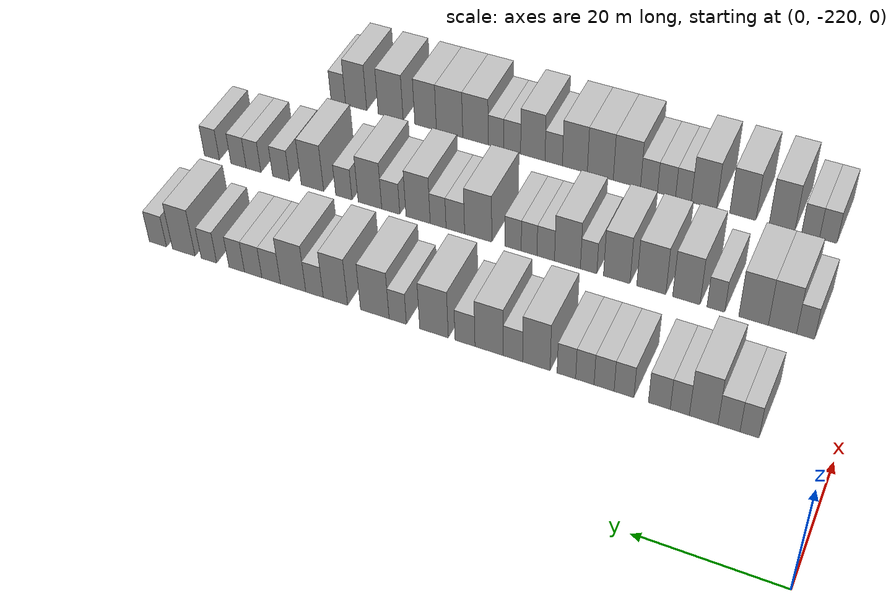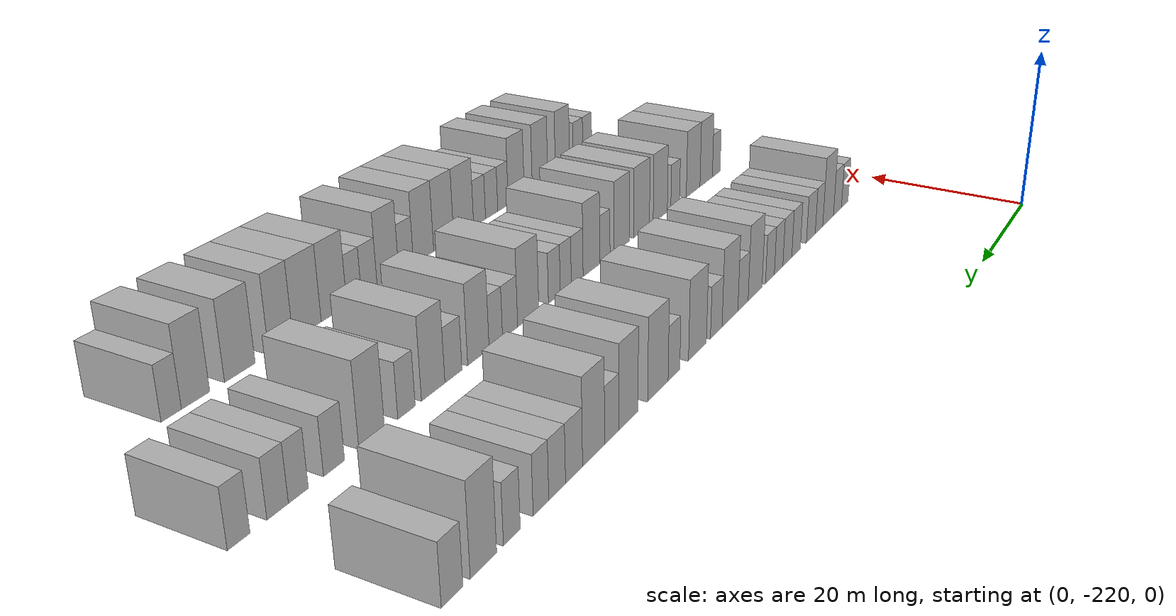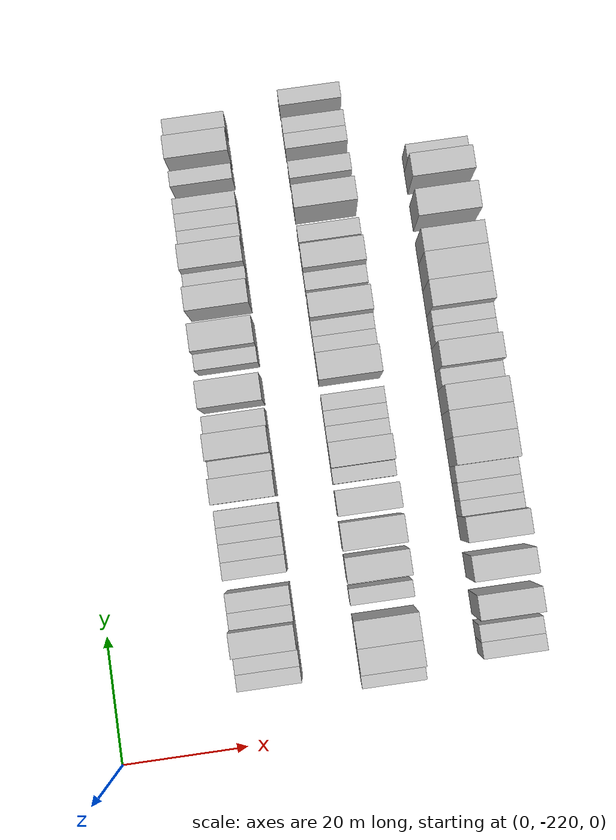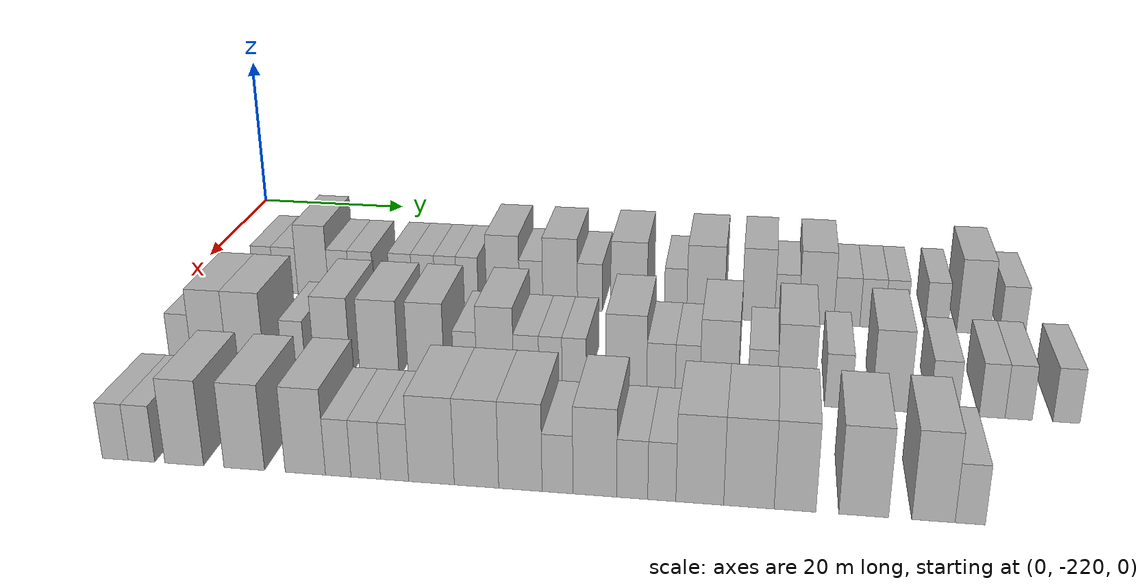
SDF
<sdf version="1.6">
 <world name="default">
  <model name="building_33">
   <static>1</static>
   <pose>25.0000 -208.9990 0 0.000000 0.000000 0.000000</pose>
   <link name="link">
    <pose>0 0 3.00 0 0 0</pose>
    <collision name="collision"><geometry><box><size>10.0000 2.5204 6.0000</size></box></geometry></collision>
    <visual name="visual">
     <cast_shadows>0</cast_shadows>
     <geometry><box><size>10.0000 2.5204 6.0000</size></box></geometry>
     <material>
      <script>
       <uri>model://HANNAS_wall/materials/scripts</uri>
       <uri>model://HANNAS_wall/materials/textures</uri>
       <name>vrc/HANNAS_wall</name>
      </script>
     </material>
    </visual>
   </link>
  </model>
  <model name="building_34">
   <static>1</static>
   <pose>25.0000 -206.2653 0 0.000000 0.000000 0.000000</pose>
   <link name="link">
    <pose>0 0 3.00 0 0 0</pose>
    <collision name="collision"><geometry><box><size>10.0000 2.9470 6.0000</size></box></geometry></collision>
    <visual name="visual">
     <cast_shadows>0</cast_shadows>
     <geometry><box><size>10.0000 2.9470 6.0000</size></box></geometry>
     <material>
      <script>
       <uri>model://HANNAS_wall/materials/scripts</uri>
       <uri>model://HANNAS_wall/materials/textures</uri>
       <name>vrc/HANNAS_wall</name>
      </script>
     </material>
    </visual>
   </link>
  </model>
  <model name="building_35">
   <static>1</static>
   <pose>25.0000 -202.8651 0 0.000000 0.000000 0.000000</pose>
   <link name="link">
    <pose>0 0 4.50 0 0 0</pose>
    <collision name="collision"><geometry><box><size>10.0000 3.8532 9.0000</size></box></geometry></collision>
    <visual name="visual">
     <cast_shadows>0</cast_shadows>
     <geometry><box><size>10.0000 3.8532 9.0000</size></box></geometry>
     <material>
      <script>
       <uri>model://HANNAS_wall/materials/scripts</uri>
       <uri>model://HANNAS_wall/materials/textures</uri>
       <name>vrc/HANNAS_wall</name>
      </script>
     </material>
    </visual>
   </link>
  </model>
  <model name="building_36">
   <static>1</static>
   <pose>25.0000 -199.6421 0 0.000000 0.000000 0.000000</pose>
   <link name="link">
    <pose>0 0 3.00 0 0 0</pose>
    <collision name="collision"><geometry><box><size>10.0000 2.5929 6.0000</size></box></geometry></collision>
    <visual name="visual">
     <cast_shadows>0</cast_shadows>
     <geometry><box><size>10.0000 2.5929 6.0000</size></box></geometry>
     <material>
      <script>
       <uri>model://HANNAS_wall/materials/scripts</uri>
       <uri>model://HANNAS_wall/materials/textures</uri>
       <name>vrc/HANNAS_wall</name>
      </script>
     </material>
    </visual>
   </link>
  </model>
  <model name="building_37">
   <static>1</static>
   <pose>25.0000 -196.8512 0 0.000000 0.000000 0.000000</pose>
   <link name="link">
    <pose>0 0 3.00 0 0 0</pose>
    <collision name="collision"><geometry><box><size>10.0000 2.9890 6.0000</size></box></geometry></collision>
    <visual name="visual">
     <cast_shadows>0</cast_shadows>
     <geometry><box><size>10.0000 2.9890 6.0000</size></box></geometry>
     <material>
      <script>
       <uri>model://HANNAS_wall/materials/scripts</uri>
       <uri>model://HANNAS_wall/materials/textures</uri>
       <name>vrc/HANNAS_wall</name>
      </script>
     </material>
    </visual>
   </link>
  </model>
  <model name="building_38">
   <static>1</static>
   <pose>25.0000 -191.9824 0 0.000000 0.000000 0.000000</pose>
   <link name="link">
    <pose>0 0 3.00 0 0 0</pose>
    <collision name="collision"><geometry><box><size>10.0000 2.7486 6.0000</size></box></geometry></collision>
    <visual name="visual">
     <cast_shadows>0</cast_shadows>
     <geometry><box><size>10.0000 2.7486 6.0000</size></box></geometry>
     <material>
      <script>
       <uri>model://HANNAS_wall/materials/scripts</uri>
       <uri>model://HANNAS_wall/materials/textures</uri>
       <name>vrc/HANNAS_wall</name>
      </script>
     </material>
    </visual>
   </link>
  </model>
  <model name="building_39">
   <static>1</static>
   <pose>25.0000 -189.2116 0 0.000000 0.000000 0.000000</pose>
   <link name="link">
    <pose>0 0 3.00 0 0 0</pose>
    <collision name="collision"><geometry><box><size>10.0000 2.7929 6.0000</size></box></geometry></collision>
    <visual name="visual">
     <cast_shadows>0</cast_shadows>
     <geometry><box><size>10.0000 2.7929 6.0000</size></box></geometry>
     <material>
      <script>
       <uri>model://HANNAS_wall/materials/scripts</uri>
       <uri>model://HANNAS_wall/materials/textures</uri>
       <name>vrc/HANNAS_wall</name>
      </script>
     </material>
    </visual>
   </link>
  </model>
  <model name="building_40">
   <static>1</static>
   <pose>25.0000 -186.5201 0 0.000000 0.000000 0.000000</pose>
   <link name="link">
    <pose>0 0 3.00 0 0 0</pose>
    <collision name="collision"><geometry><box><size>10.0000 2.5901 6.0000</size></box></geometry></collision>
    <visual name="visual">
     <cast_shadows>0</cast_shadows>
     <geometry><box><size>10.0000 2.5901 6.0000</size></box></geometry>
     <material>
      <script>
       <uri>model://HANNAS_wall/materials/scripts</uri>
       <uri>model://HANNAS_wall/materials/textures</uri>
       <name>vrc/HANNAS_wall</name>
      </script>
     </material>
    </visual>
   </link>
  </model>
  <model name="building_41">
   <static>1</static>
   <pose>25.0000 -183.9084 0 0.000000 0.000000 0.000000</pose>
   <link name="link">
    <pose>0 0 3.00 0 0 0</pose>
    <collision name="collision"><geometry><box><size>10.0000 2.6333 6.0000</size></box></geometry></collision>
    <visual name="visual">
     <cast_shadows>0</cast_shadows>
     <geometry><box><size>10.0000 2.6333 6.0000</size></box></geometry>
     <material>
      <script>
       <uri>model://HANNAS_wall/materials/scripts</uri>
       <uri>model://HANNAS_wall/materials/textures</uri>
       <name>vrc/HANNAS_wall</name>
      </script>
     </material>
    </visual>
   </link>
  </model>
  <model name="building_42">
   <static>1</static>
   <pose>25.0000 -179.6221 0 0.000000 0.000000 0.000000</pose>
   <link name="link">
    <pose>0 0 4.50 0 0 0</pose>
    <collision name="collision"><geometry><box><size>10.0000 3.9394 9.0000</size></box></geometry></collision>
    <visual name="visual">
     <cast_shadows>0</cast_shadows>
     <geometry><box><size>10.0000 3.9394 9.0000</size></box></geometry>
     <material>
      <script>
       <uri>model://HANNAS_wall/materials/scripts</uri>
       <uri>model://HANNAS_wall/materials/textures</uri>
       <name>vrc/HANNAS_wall</name>
      </script>
     </material>
    </visual>
   </link>
  </model>
  <model name="building_43">
   <static>1</static>
   <pose>25.0000 -176.2535 0 0.000000 0.000000 0.000000</pose>
   <link name="link">
    <pose>0 0 3.00 0 0 0</pose>
    <collision name="collision"><geometry><box><size>10.0000 2.7978 6.0000</size></box></geometry></collision>
    <visual name="visual">
     <cast_shadows>0</cast_shadows>
     <geometry><box><size>10.0000 2.7978 6.0000</size></box></geometry>
     <material>
      <script>
       <uri>model://HANNAS_wall/materials/scripts</uri>
       <uri>model://HANNAS_wall/materials/textures</uri>
       <name>vrc/HANNAS_wall</name>
      </script>
     </material>
    </visual>
   </link>
  </model>
  <model name="building_44">
   <static>1</static>
   <pose>25.0000 -172.7922 0 0.000000 0.000000 0.000000</pose>
   <link name="link">
    <pose>0 0 4.50 0 0 0</pose>
    <collision name="collision"><geometry><box><size>10.0000 4.1246 9.0000</size></box></geometry></collision>
    <visual name="visual">
     <cast_shadows>0</cast_shadows>
     <geometry><box><size>10.0000 4.1246 9.0000</size></box></geometry>
     <material>
      <script>
       <uri>model://HANNAS_wall/materials/scripts</uri>
       <uri>model://HANNAS_wall/materials/textures</uri>
       <name>vrc/HANNAS_wall</name>
      </script>
     </material>
    </visual>
   </link>
  </model>
  <model name="building_45">
   <static>1</static>
   <pose>25.0000 -169.2638 0 0.000000 0.000000 0.000000</pose>
   <link name="link">
    <pose>0 0 3.00 0 0 0</pose>
    <collision name="collision"><geometry><box><size>10.0000 2.9322 6.0000</size></box></geometry></collision>
    <visual name="visual">
     <cast_shadows>0</cast_shadows>
     <geometry><box><size>10.0000 2.9322 6.0000</size></box></geometry>
     <material>
      <script>
       <uri>model://HANNAS_wall/materials/scripts</uri>
       <uri>model://HANNAS_wall/materials/textures</uri>
       <name>vrc/HANNAS_wall</name>
      </script>
     </material>
    </visual>
   </link>
  </model>
  <model name="building_46">
   <static>1</static>
   <pose>25.0000 -164.6621 0 0.000000 0.000000 0.000000</pose>
   <link name="link">
    <pose>0 0 4.50 0 0 0</pose>
    <collision name="collision"><geometry><box><size>10.0000 4.2710 9.0000</size></box></geometry></collision>
    <visual name="visual">
     <cast_shadows>0</cast_shadows>
     <geometry><box><size>10.0000 4.2710 9.0000</size></box></geometry>
     <material>
      <script>
       <uri>model://HANNAS_wall/materials/scripts</uri>
       <uri>model://HANNAS_wall/materials/textures</uri>
       <name>vrc/HANNAS_wall</name>
      </script>
     </material>
    </visual>
   </link>
  </model>
  <model name="building_47">
   <static>1</static>
   <pose>25.0000 -159.2184 0 0.000000 0.000000 0.000000</pose>
   <link name="link">
    <pose>0 0 3.00 0 0 0</pose>
    <collision name="collision"><geometry><box><size>10.0000 2.6165 6.0000</size></box></geometry></collision>
    <visual name="visual">
     <cast_shadows>0</cast_shadows>
     <geometry><box><size>10.0000 2.6165 6.0000</size></box></geometry>
     <material>
      <script>
       <uri>model://HANNAS_wall/materials/scripts</uri>
       <uri>model://HANNAS_wall/materials/textures</uri>
       <name>vrc/HANNAS_wall</name>
      </script>
     </material>
    </visual>
   </link>
  </model>
  <model name="building_48">
   <static>1</static>
   <pose>25.0000 -155.7298 0 0.000000 0.000000 0.000000</pose>
   <link name="link">
    <pose>0 0 4.50 0 0 0</pose>
    <collision name="collision"><geometry><box><size>10.0000 4.3605 9.0000</size></box></geometry></collision>
    <visual name="visual">
     <cast_shadows>0</cast_shadows>
     <geometry><box><size>10.0000 4.3605 9.0000</size></box></geometry>
     <material>
      <script>
       <uri>model://HANNAS_wall/materials/scripts</uri>
       <uri>model://HANNAS_wall/materials/textures</uri>
       <name>vrc/HANNAS_wall</name>
      </script>
     </material>
    </visual>
   </link>
  </model>
  <model name="building_49">
   <static>1</static>
   <pose>25.0000 -149.6635 0 0.000000 0.000000 0.000000</pose>
   <link name="link">
    <pose>0 0 4.50 0 0 0</pose>
    <collision name="collision"><geometry><box><size>10.0000 3.7723 9.0000</size></box></geometry></collision>
    <visual name="visual">
     <cast_shadows>0</cast_shadows>
     <geometry><box><size>10.0000 3.7723 9.0000</size></box></geometry>
     <material>
      <script>
       <uri>model://HANNAS_wall/materials/scripts</uri>
       <uri>model://HANNAS_wall/materials/textures</uri>
       <name>vrc/HANNAS_wall</name>
      </script>
     </material>
    </visual>
   </link>
  </model>
  <model name="building_50">
   <static>1</static>
   <pose>25.0000 -146.4095 0 0.000000 0.000000 0.000000</pose>
   <link name="link">
    <pose>0 0 3.00 0 0 0</pose>
    <collision name="collision"><geometry><box><size>10.0000 2.7356 6.0000</size></box></geometry></collision>
    <visual name="visual">
     <cast_shadows>0</cast_shadows>
     <geometry><box><size>10.0000 2.7356 6.0000</size></box></geometry>
     <material>
      <script>
       <uri>model://HANNAS_wall/materials/scripts</uri>
       <uri>model://HANNAS_wall/materials/textures</uri>
       <name>vrc/HANNAS_wall</name>
      </script>
     </material>
    </visual>
   </link>
  </model>
  <model name="building_51">
   <static>1</static>
   <pose>25.0000 -143.0372 0 0.000000 0.000000 0.000000</pose>
   <link name="link">
    <pose>0 0 4.50 0 0 0</pose>
    <collision name="collision"><geometry><box><size>10.0000 4.0091 9.0000</size></box></geometry></collision>
    <visual name="visual">
     <cast_shadows>0</cast_shadows>
     <geometry><box><size>10.0000 4.0091 9.0000</size></box></geometry>
     <material>
      <script>
       <uri>model://HANNAS_wall/materials/scripts</uri>
       <uri>model://HANNAS_wall/materials/textures</uri>
       <name>vrc/HANNAS_wall</name>
      </script>
     </material>
    </visual>
   </link>
  </model>
  <model name="building_52">
   <static>1</static>
   <pose>25.0000 -139.5609 0 0.000000 0.000000 0.000000</pose>
   <link name="link">
    <pose>0 0 3.00 0 0 0</pose>
    <collision name="collision"><geometry><box><size>10.0000 2.9435 6.0000</size></box></geometry></collision>
    <visual name="visual">
     <cast_shadows>0</cast_shadows>
     <geometry><box><size>10.0000 2.9435 6.0000</size></box></geometry>
     <material>
      <script>
       <uri>model://HANNAS_wall/materials/scripts</uri>
       <uri>model://HANNAS_wall/materials/textures</uri>
       <name>vrc/HANNAS_wall</name>
      </script>
     </material>
    </visual>
   </link>
  </model>
  <model name="building_53">
   <static>1</static>
   <pose>25.0000 -136.6943 0 0.000000 0.000000 0.000000</pose>
   <link name="link">
    <pose>0 0 3.00 0 0 0</pose>
    <collision name="collision"><geometry><box><size>10.0000 2.7898 6.0000</size></box></geometry></collision>
    <visual name="visual">
     <cast_shadows>0</cast_shadows>
     <geometry><box><size>10.0000 2.7898 6.0000</size></box></geometry>
     <material>
      <script>
       <uri>model://HANNAS_wall/materials/scripts</uri>
       <uri>model://HANNAS_wall/materials/textures</uri>
       <name>vrc/HANNAS_wall</name>
      </script>
     </material>
    </visual>
   </link>
  </model>
  <model name="building_54">
   <static>1</static>
   <pose>25.0000 -134.0482 0 0.000000 0.000000 0.000000</pose>
   <link name="link">
    <pose>0 0 3.00 0 0 0</pose>
    <collision name="collision"><geometry><box><size>10.0000 2.5023 6.0000</size></box></geometry></collision>
    <visual name="visual">
     <cast_shadows>0</cast_shadows>
     <geometry><box><size>10.0000 2.5023 6.0000</size></box></geometry>
     <material>
      <script>
       <uri>model://HANNAS_wall/materials/scripts</uri>
       <uri>model://HANNAS_wall/materials/textures</uri>
       <name>vrc/HANNAS_wall</name>
      </script>
     </material>
    </visual>
   </link>
  </model>
  <model name="building_55">
   <static>1</static>
   <pose>25.0000 -129.5358 0 0.000000 0.000000 0.000000</pose>
   <link name="link">
    <pose>0 0 3.00 0 0 0</pose>
    <collision name="collision"><geometry><box><size>10.0000 2.5225 6.0000</size></box></geometry></collision>
    <visual name="visual">
     <cast_shadows>0</cast_shadows>
     <geometry><box><size>10.0000 2.5225 6.0000</size></box></geometry>
     <material>
      <script>
       <uri>model://HANNAS_wall/materials/scripts</uri>
       <uri>model://HANNAS_wall/materials/textures</uri>
       <name>vrc/HANNAS_wall</name>
      </script>
     </material>
    </visual>
   </link>
  </model>
  <model name="building_56">
   <static>1</static>
   <pose>25.0000 -125.4137 0 0.000000 0.000000 0.000000</pose>
   <link name="link">
    <pose>0 0 4.50 0 0 0</pose>
    <collision name="collision"><geometry><box><size>10.0000 3.7218 9.0000</size></box></geometry></collision>
    <visual name="visual">
     <cast_shadows>0</cast_shadows>
     <geometry><box><size>10.0000 3.7218 9.0000</size></box></geometry>
     <material>
      <script>
       <uri>model://HANNAS_wall/materials/scripts</uri>
       <uri>model://HANNAS_wall/materials/textures</uri>
       <name>vrc/HANNAS_wall</name>
      </script>
     </material>
    </visual>
   </link>
  </model>
  <model name="building_57">
   <static>1</static>
   <pose>25.0000 -121.1268 0 0.000000 0.000000 0.000000</pose>
   <link name="link">
    <pose>0 0 3.00 0 0 0</pose>
    <collision name="collision"><geometry><box><size>10.0000 2.8519 6.0000</size></box></geometry></collision>
    <visual name="visual">
     <cast_shadows>0</cast_shadows>
     <geometry><box><size>10.0000 2.8519 6.0000</size></box></geometry>
     <material>
      <script>
       <uri>model://HANNAS_wall/materials/scripts</uri>
       <uri>model://HANNAS_wall/materials/textures</uri>
       <name>vrc/HANNAS_wall</name>
      </script>
     </material>
    </visual>
   </link>
  </model>
  <model name="building_210">
   <static>1</static>
   <pose>44.0000 -211.2154 0 0.000000 0.000000 0.000000</pose>
   <link name="link">
    <pose>0 0 3.00 0 0 0</pose>
    <collision name="collision"><geometry><box><size>10.0000 2.5073 6.0000</size></box></geometry></collision>
    <visual name="visual">
     <cast_shadows>0</cast_shadows>
     <geometry><box><size>10.0000 2.5073 6.0000</size></box></geometry>
     <material>
      <script>
       <uri>model://HANNAS_wall/materials/scripts</uri>
       <uri>model://HANNAS_wall/materials/textures</uri>
       <name>vrc/HANNAS_wall</name>
      </script>
     </material>
    </visual>
   </link>
  </model>
  <model name="building_211">
   <static>1</static>
   <pose>44.0000 -207.9868 0 0.000000 0.000000 0.000000</pose>
   <link name="link">
    <pose>0 0 4.50 0 0 0</pose>
    <collision name="collision"><geometry><box><size>10.0000 3.9499 9.0000</size></box></geometry></collision>
    <visual name="visual">
     <cast_shadows>0</cast_shadows>
     <geometry><box><size>10.0000 3.9499 9.0000</size></box></geometry>
     <material>
      <script>
       <uri>model://HANNAS_wall/materials/scripts</uri>
       <uri>model://HANNAS_wall/materials/textures</uri>
       <name>vrc/HANNAS_wall</name>
      </script>
     </material>
    </visual>
   </link>
  </model>
  <model name="building_212">
   <static>1</static>
   <pose>44.0000 -203.9167 0 0.000000 0.000000 0.000000</pose>
   <link name="link">
    <pose>0 0 4.50 0 0 0</pose>
    <collision name="collision"><geometry><box><size>10.0000 4.1903 9.0000</size></box></geometry></collision>
    <visual name="visual">
     <cast_shadows>0</cast_shadows>
     <geometry><box><size>10.0000 4.1903 9.0000</size></box></geometry>
     <material>
      <script>
       <uri>model://HANNAS_wall/materials/scripts</uri>
       <uri>model://HANNAS_wall/materials/textures</uri>
       <name>vrc/HANNAS_wall</name>
      </script>
     </material>
    </visual>
   </link>
  </model>
  <model name="building_213">
   <static>1</static>
   <pose>44.0000 -198.5440 0 0.000000 0.000000 0.000000</pose>
   <link name="link">
    <pose>0 0 3.00 0 0 0</pose>
    <collision name="collision"><geometry><box><size>10.0000 2.5553 6.0000</size></box></geometry></collision>
    <visual name="visual">
     <cast_shadows>0</cast_shadows>
     <geometry><box><size>10.0000 2.5553 6.0000</size></box></geometry>
     <material>
      <script>
       <uri>model://HANNAS_wall/materials/scripts</uri>
       <uri>model://HANNAS_wall/materials/textures</uri>
       <name>vrc/HANNAS_wall</name>
      </script>
     </material>
    </visual>
   </link>
  </model>
  <model name="building_214">
   <static>1</static>
   <pose>44.0000 -194.2809 0 0.000000 0.000000 0.000000</pose>
   <link name="link">
    <pose>0 0 4.50 0 0 0</pose>
    <collision name="collision"><geometry><box><size>10.0000 3.9709 9.0000</size></box></geometry></collision>
    <visual name="visual">
     <cast_shadows>0</cast_shadows>
     <geometry><box><size>10.0000 3.9709 9.0000</size></box></geometry>
     <material>
      <script>
       <uri>model://HANNAS_wall/materials/scripts</uri>
       <uri>model://HANNAS_wall/materials/textures</uri>
       <name>vrc/HANNAS_wall</name>
      </script>
     </material>
    </visual>
   </link>
  </model>
  <model name="building_215">
   <static>1</static>
   <pose>44.0000 -189.1593 0 0.000000 0.000000 0.000000</pose>
   <link name="link">
    <pose>0 0 4.50 0 0 0</pose>
    <collision name="collision"><geometry><box><size>10.0000 4.2723 9.0000</size></box></geometry></collision>
    <visual name="visual">
     <cast_shadows>0</cast_shadows>
     <geometry><box><size>10.0000 4.2723 9.0000</size></box></geometry>
     <material>
      <script>
       <uri>model://HANNAS_wall/materials/scripts</uri>
       <uri>model://HANNAS_wall/materials/textures</uri>
       <name>vrc/HANNAS_wall</name>
      </script>
     </material>
    </visual>
   </link>
  </model>
  <model name="building_216">
   <static>1</static>
   <pose>44.0000 -184.0542 0 0.000000 0.000000 0.000000</pose>
   <link name="link">
    <pose>0 0 4.50 0 0 0</pose>
    <collision name="collision"><geometry><box><size>10.0000 3.9378 9.0000</size></box></geometry></collision>
    <visual name="visual">
     <cast_shadows>0</cast_shadows>
     <geometry><box><size>10.0000 3.9378 9.0000</size></box></geometry>
     <material>
      <script>
       <uri>model://HANNAS_wall/materials/scripts</uri>
       <uri>model://HANNAS_wall/materials/textures</uri>
       <name>vrc/HANNAS_wall</name>
      </script>
     </material>
    </visual>
   </link>
  </model>
  <model name="building_217">
   <static>1</static>
   <pose>44.0000 -179.8505 0 0.000000 0.000000 0.000000</pose>
   <link name="link">
    <pose>0 0 3.00 0 0 0</pose>
    <collision name="collision"><geometry><box><size>10.0000 2.4697 6.0000</size></box></geometry></collision>
    <visual name="visual">
     <cast_shadows>0</cast_shadows>
     <geometry><box><size>10.0000 2.4697 6.0000</size></box></geometry>
     <material>
      <script>
       <uri>model://HANNAS_wall/materials/scripts</uri>
       <uri>model://HANNAS_wall/materials/textures</uri>
       <name>vrc/HANNAS_wall</name>
      </script>
     </material>
    </visual>
   </link>
  </model>
  <model name="building_218">
   <static>1</static>
   <pose>44.0000 -176.6518 0 0.000000 0.000000 0.000000</pose>
   <link name="link">
    <pose>0 0 4.50 0 0 0</pose>
    <collision name="collision"><geometry><box><size>10.0000 3.9276 9.0000</size></box></geometry></collision>
    <visual name="visual">
     <cast_shadows>0</cast_shadows>
     <geometry><box><size>10.0000 3.9276 9.0000</size></box></geometry>
     <material>
      <script>
       <uri>model://HANNAS_wall/materials/scripts</uri>
       <uri>model://HANNAS_wall/materials/textures</uri>
       <name>vrc/HANNAS_wall</name>
      </script>
     </material>
    </visual>
   </link>
  </model>
  <model name="building_219">
   <static>1</static>
   <pose>44.0000 -173.3503 0 0.000000 0.000000 0.000000</pose>
   <link name="link">
    <pose>0 0 3.00 0 0 0</pose>
    <collision name="collision"><geometry><box><size>10.0000 2.6756 6.0000</size></box></geometry></collision>
    <visual name="visual">
     <cast_shadows>0</cast_shadows>
     <geometry><box><size>10.0000 2.6756 6.0000</size></box></geometry>
     <material>
      <script>
       <uri>model://HANNAS_wall/materials/scripts</uri>
       <uri>model://HANNAS_wall/materials/textures</uri>
       <name>vrc/HANNAS_wall</name>
      </script>
     </material>
    </visual>
   </link>
  </model>
  <model name="building_220">
   <static>1</static>
   <pose>44.0000 -170.7973 0 0.000000 0.000000 0.000000</pose>
   <link name="link">
    <pose>0 0 3.00 0 0 0</pose>
    <collision name="collision"><geometry><box><size>10.0000 2.4304 6.0000</size></box></geometry></collision>
    <visual name="visual">
     <cast_shadows>0</cast_shadows>
     <geometry><box><size>10.0000 2.4304 6.0000</size></box></geometry>
     <material>
      <script>
       <uri>model://HANNAS_wall/materials/scripts</uri>
       <uri>model://HANNAS_wall/materials/textures</uri>
       <name>vrc/HANNAS_wall</name>
      </script>
     </material>
    </visual>
   </link>
  </model>
  <model name="building_221">
   <static>1</static>
   <pose>44.0000 -168.3030 0 0.000000 0.000000 0.000000</pose>
   <link name="link">
    <pose>0 0 3.00 0 0 0</pose>
    <collision name="collision"><geometry><box><size>10.0000 2.5582 6.0000</size></box></geometry></collision>
    <visual name="visual">
     <cast_shadows>0</cast_shadows>
     <geometry><box><size>10.0000 2.5582 6.0000</size></box></geometry>
     <material>
      <script>
       <uri>model://HANNAS_wall/materials/scripts</uri>
       <uri>model://HANNAS_wall/materials/textures</uri>
       <name>vrc/HANNAS_wall</name>
      </script>
     </material>
    </visual>
   </link>
  </model>
  <model name="building_222">
   <static>1</static>
   <pose>44.0000 -162.8863 0 0.000000 0.000000 0.000000</pose>
   <link name="link">
    <pose>0 0 4.50 0 0 0</pose>
    <collision name="collision"><geometry><box><size>10.0000 4.2752 9.0000</size></box></geometry></collision>
    <visual name="visual">
     <cast_shadows>0</cast_shadows>
     <geometry><box><size>10.0000 4.2752 9.0000</size></box></geometry>
     <material>
      <script>
       <uri>model://HANNAS_wall/materials/scripts</uri>
       <uri>model://HANNAS_wall/materials/textures</uri>
       <name>vrc/HANNAS_wall</name>
      </script>
     </material>
    </visual>
   </link>
  </model>
  <model name="building_223">
   <static>1</static>
   <pose>44.0000 -159.2791 0 0.000000 0.000000 0.000000</pose>
   <link name="link">
    <pose>0 0 3.00 0 0 0</pose>
    <collision name="collision"><geometry><box><size>10.0000 2.9393 6.0000</size></box></geometry></collision>
    <visual name="visual">
     <cast_shadows>0</cast_shadows>
     <geometry><box><size>10.0000 2.9393 6.0000</size></box></geometry>
     <material>
      <script>
       <uri>model://HANNAS_wall/materials/scripts</uri>
       <uri>model://HANNAS_wall/materials/textures</uri>
       <name>vrc/HANNAS_wall</name>
      </script>
     </material>
    </visual>
   </link>
  </model>
  <model name="building_224">
   <static>1</static>
   <pose>44.0000 -156.5455 0 0.000000 0.000000 0.000000</pose>
   <link name="link">
    <pose>0 0 3.00 0 0 0</pose>
    <collision name="collision"><geometry><box><size>10.0000 2.5279 6.0000</size></box></geometry></collision>
    <visual name="visual">
     <cast_shadows>0</cast_shadows>
     <geometry><box><size>10.0000 2.5279 6.0000</size></box></geometry>
     <material>
      <script>
       <uri>model://HANNAS_wall/materials/scripts</uri>
       <uri>model://HANNAS_wall/materials/textures</uri>
       <name>vrc/HANNAS_wall</name>
      </script>
     </material>
    </visual>
   </link>
  </model>
  <model name="building_225">
   <static>1</static>
   <pose>44.0000 -153.3361 0 0.000000 0.000000 0.000000</pose>
   <link name="link">
    <pose>0 0 4.50 0 0 0</pose>
    <collision name="collision"><geometry><box><size>10.0000 3.8909 9.0000</size></box></geometry></collision>
    <visual name="visual">
     <cast_shadows>0</cast_shadows>
     <geometry><box><size>10.0000 3.8909 9.0000</size></box></geometry>
     <material>
      <script>
       <uri>model://HANNAS_wall/materials/scripts</uri>
       <uri>model://HANNAS_wall/materials/textures</uri>
       <name>vrc/HANNAS_wall</name>
      </script>
     </material>
    </visual>
   </link>
  </model>
  <model name="building_226">
   <static>1</static>
   <pose>44.0000 -148.9268 0 0.000000 0.000000 0.000000</pose>
   <link name="link">
    <pose>0 0 3.00 0 0 0</pose>
    <collision name="collision"><geometry><box><size>10.0000 2.9278 6.0000</size></box></geometry></collision>
    <visual name="visual">
     <cast_shadows>0</cast_shadows>
     <geometry><box><size>10.0000 2.9278 6.0000</size></box></geometry>
     <material>
      <script>
       <uri>model://HANNAS_wall/materials/scripts</uri>
       <uri>model://HANNAS_wall/materials/textures</uri>
       <name>vrc/HANNAS_wall</name>
      </script>
     </material>
    </visual>
   </link>
  </model>
  <model name="building_227">
   <static>1</static>
   <pose>44.0000 -145.5281 0 0.000000 0.000000 0.000000</pose>
   <link name="link">
    <pose>0 0 4.50 0 0 0</pose>
    <collision name="collision"><geometry><box><size>10.0000 3.8696 9.0000</size></box></geometry></collision>
    <visual name="visual">
     <cast_shadows>0</cast_shadows>
     <geometry><box><size>10.0000 3.8696 9.0000</size></box></geometry>
     <material>
      <script>
       <uri>model://HANNAS_wall/materials/scripts</uri>
       <uri>model://HANNAS_wall/materials/textures</uri>
       <name>vrc/HANNAS_wall</name>
      </script>
     </material>
    </visual>
   </link>
  </model>
  <model name="building_228">
   <static>1</static>
   <pose>44.0000 -141.2381 0 0.000000 0.000000 0.000000</pose>
   <link name="link">
    <pose>0 0 3.00 0 0 0</pose>
    <collision name="collision"><geometry><box><size>10.0000 2.7104 6.0000</size></box></geometry></collision>
    <visual name="visual">
     <cast_shadows>0</cast_shadows>
     <geometry><box><size>10.0000 2.7104 6.0000</size></box></geometry>
     <material>
      <script>
       <uri>model://HANNAS_wall/materials/scripts</uri>
       <uri>model://HANNAS_wall/materials/textures</uri>
       <name>vrc/HANNAS_wall</name>
      </script>
     </material>
    </visual>
   </link>
  </model>
  <model name="building_229">
   <static>1</static>
   <pose>44.0000 -136.0036 0 0.000000 0.000000 0.000000</pose>
   <link name="link">
    <pose>0 0 4.50 0 0 0</pose>
    <collision name="collision"><geometry><box><size>10.0000 3.7586 9.0000</size></box></geometry></collision>
    <visual name="visual">
     <cast_shadows>0</cast_shadows>
     <geometry><box><size>10.0000 3.7586 9.0000</size></box></geometry>
     <material>
      <script>
       <uri>model://HANNAS_wall/materials/scripts</uri>
       <uri>model://HANNAS_wall/materials/textures</uri>
       <name>vrc/HANNAS_wall</name>
      </script>
     </material>
    </visual>
   </link>
  </model>
  <model name="building_230">
   <static>1</static>
   <pose>44.0000 -130.6986 0 0.000000 0.000000 0.000000</pose>
   <link name="link">
    <pose>0 0 3.00 0 0 0</pose>
    <collision name="collision"><geometry><box><size>10.0000 2.8514 6.0000</size></box></geometry></collision>
    <visual name="visual">
     <cast_shadows>0</cast_shadows>
     <geometry><box><size>10.0000 2.8514 6.0000</size></box></geometry>
     <material>
      <script>
       <uri>model://HANNAS_wall/materials/scripts</uri>
       <uri>model://HANNAS_wall/materials/textures</uri>
       <name>vrc/HANNAS_wall</name>
      </script>
     </material>
    </visual>
   </link>
  </model>
  <model name="building_231">
   <static>1</static>
   <pose>44.0000 -126.0085 0 0.000000 0.000000 0.000000</pose>
   <link name="link">
    <pose>0 0 3.00 0 0 0</pose>
    <collision name="collision"><geometry><box><size>10.0000 2.5288 6.0000</size></box></geometry></collision>
    <visual name="visual">
     <cast_shadows>0</cast_shadows>
     <geometry><box><size>10.0000 2.5288 6.0000</size></box></geometry>
     <material>
      <script>
       <uri>model://HANNAS_wall/materials/scripts</uri>
       <uri>model://HANNAS_wall/materials/textures</uri>
       <name>vrc/HANNAS_wall</name>
      </script>
     </material>
    </visual>
   </link>
  </model>
  <model name="building_232">
   <static>1</static>
   <pose>44.0000 -123.4267 0 0.000000 0.000000 0.000000</pose>
   <link name="link">
    <pose>0 0 3.00 0 0 0</pose>
    <collision name="collision"><geometry><box><size>10.0000 2.6349 6.0000</size></box></geometry></collision>
    <visual name="visual">
     <cast_shadows>0</cast_shadows>
     <geometry><box><size>10.0000 2.6349 6.0000</size></box></geometry>
     <material>
      <script>
       <uri>model://HANNAS_wall/materials/scripts</uri>
       <uri>model://HANNAS_wall/materials/textures</uri>
       <name>vrc/HANNAS_wall</name>
      </script>
     </material>
    </visual>
   </link>
  </model>
  <model name="building_233">
   <static>1</static>
   <pose>44.0000 -118.8065 0 0.000000 0.000000 0.000000</pose>
   <link name="link">
    <pose>0 0 3.00 0 0 0</pose>
    <collision name="collision"><geometry><box><size>10.0000 2.6056 6.0000</size></box></geometry></collision>
    <visual name="visual">
     <cast_shadows>0</cast_shadows>
     <geometry><box><size>10.0000 2.6056 6.0000</size></box></geometry>
     <material>
      <script>
       <uri>model://HANNAS_wall/materials/scripts</uri>
       <uri>model://HANNAS_wall/materials/textures</uri>
       <name>vrc/HANNAS_wall</name>
      </script>
     </material>
    </visual>
   </link>
  </model>
  <model name="building_392">
   <static>1</static>
   <pose>63.0000 -209.4259 0 0.000000 0.000000 0.000000</pose>
   <link name="link">
    <pose>0 0 3.00 0 0 0</pose>
    <collision name="collision"><geometry><box><size>10.0000 2.5719 6.0000</size></box></geometry></collision>
    <visual name="visual">
     <cast_shadows>0</cast_shadows>
     <geometry><box><size>10.0000 2.5719 6.0000</size></box></geometry>
     <material>
      <script>
       <uri>model://HANNAS_wall/materials/scripts</uri>
       <uri>model://HANNAS_wall/materials/textures</uri>
       <name>vrc/HANNAS_wall</name>
      </script>
     </material>
    </visual>
   </link>
  </model>
  <model name="building_393">
   <static>1</static>
   <pose>63.0000 -206.8123 0 0.000000 0.000000 0.000000</pose>
   <link name="link">
    <pose>0 0 3.00 0 0 0</pose>
    <collision name="collision"><geometry><box><size>10.0000 2.6554 6.0000</size></box></geometry></collision>
    <visual name="visual">
     <cast_shadows>0</cast_shadows>
     <geometry><box><size>10.0000 2.6554 6.0000</size></box></geometry>
     <material>
      <script>
       <uri>model://HANNAS_wall/materials/scripts</uri>
       <uri>model://HANNAS_wall/materials/textures</uri>
       <name>vrc/HANNAS_wall</name>
      </script>
     </material>
    </visual>
   </link>
  </model>
  <model name="building_394">
   <static>1</static>
   <pose>63.0000 -202.5715 0 0.000000 0.000000 0.000000</pose>
   <link name="link">
    <pose>0 0 4.50 0 0 0</pose>
    <collision name="collision"><geometry><box><size>10.0000 3.8262 9.0000</size></box></geometry></collision>
    <visual name="visual">
     <cast_shadows>0</cast_shadows>
     <geometry><box><size>10.0000 3.8262 9.0000</size></box></geometry>
     <material>
      <script>
       <uri>model://HANNAS_wall/materials/scripts</uri>
       <uri>model://HANNAS_wall/materials/textures</uri>
       <name>vrc/HANNAS_wall</name>
      </script>
     </material>
    </visual>
   </link>
  </model>
  <model name="building_395">
   <static>1</static>
   <pose>63.0000 -196.6802 0 0.000000 0.000000 0.000000</pose>
   <link name="link">
    <pose>0 0 4.50 0 0 0</pose>
    <collision name="collision"><geometry><box><size>10.0000 3.9564 9.0000</size></box></geometry></collision>
    <visual name="visual">
     <cast_shadows>0</cast_shadows>
     <geometry><box><size>10.0000 3.9564 9.0000</size></box></geometry>
     <material>
      <script>
       <uri>model://HANNAS_wall/materials/scripts</uri>
       <uri>model://HANNAS_wall/materials/textures</uri>
       <name>vrc/HANNAS_wall</name>
      </script>
     </material>
    </visual>
   </link>
  </model>
  <model name="building_396">
   <static>1</static>
   <pose>63.0000 -190.7588 0 0.000000 0.000000 0.000000</pose>
   <link name="link">
    <pose>0 0 4.50 0 0 0</pose>
    <collision name="collision"><geometry><box><size>10.0000 3.8863 9.0000</size></box></geometry></collision>
    <visual name="visual">
     <cast_shadows>0</cast_shadows>
     <geometry><box><size>10.0000 3.8863 9.0000</size></box></geometry>
     <material>
      <script>
       <uri>model://HANNAS_wall/materials/scripts</uri>
       <uri>model://HANNAS_wall/materials/textures</uri>
       <name>vrc/HANNAS_wall</name>
      </script>
     </material>
    </visual>
   </link>
  </model>
  <model name="building_397">
   <static>1</static>
   <pose>63.0000 -187.5917 0 0.000000 0.000000 0.000000</pose>
   <link name="link">
    <pose>0 0 3.00 0 0 0</pose>
    <collision name="collision"><geometry><box><size>10.0000 2.4477 6.0000</size></box></geometry></collision>
    <visual name="visual">
     <cast_shadows>0</cast_shadows>
     <geometry><box><size>10.0000 2.4477 6.0000</size></box></geometry>
     <material>
      <script>
       <uri>model://HANNAS_wall/materials/scripts</uri>
       <uri>model://HANNAS_wall/materials/textures</uri>
       <name>vrc/HANNAS_wall</name>
      </script>
     </material>
    </visual>
   </link>
  </model>
  <model name="building_398">
   <static>1</static>
   <pose>63.0000 -184.9614 0 0.000000 0.000000 0.000000</pose>
   <link name="link">
    <pose>0 0 3.00 0 0 0</pose>
    <collision name="collision"><geometry><box><size>10.0000 2.8130 6.0000</size></box></geometry></collision>
    <visual name="visual">
     <cast_shadows>0</cast_shadows>
     <geometry><box><size>10.0000 2.8130 6.0000</size></box></geometry>
     <material>
      <script>
       <uri>model://HANNAS_wall/materials/scripts</uri>
       <uri>model://HANNAS_wall/materials/textures</uri>
       <name>vrc/HANNAS_wall</name>
      </script>
     </material>
    </visual>
   </link>
  </model>
  <model name="building_399">
   <static>1</static>
   <pose>63.0000 -182.2261 0 0.000000 0.000000 0.000000</pose>
   <link name="link">
    <pose>0 0 3.00 0 0 0</pose>
    <collision name="collision"><geometry><box><size>10.0000 2.6577 6.0000</size></box></geometry></collision>
    <visual name="visual">
     <cast_shadows>0</cast_shadows>
     <geometry><box><size>10.0000 2.6577 6.0000</size></box></geometry>
     <material>
      <script>
       <uri>model://HANNAS_wall/materials/scripts</uri>
       <uri>model://HANNAS_wall/materials/textures</uri>
       <name>vrc/HANNAS_wall</name>
      </script>
     </material>
    </visual>
   </link>
  </model>
  <model name="building_400">
   <static>1</static>
   <pose>63.0000 -178.7438 0 0.000000 0.000000 0.000000</pose>
   <link name="link">
    <pose>0 0 4.50 0 0 0</pose>
    <collision name="collision"><geometry><box><size>10.0000 4.3069 9.0000</size></box></geometry></collision>
    <visual name="visual">
     <cast_shadows>0</cast_shadows>
     <geometry><box><size>10.0000 4.3069 9.0000</size></box></geometry>
     <material>
      <script>
       <uri>model://HANNAS_wall/materials/scripts</uri>
       <uri>model://HANNAS_wall/materials/textures</uri>
       <name>vrc/HANNAS_wall</name>
      </script>
     </material>
    </visual>
   </link>
  </model>
  <model name="building_401">
   <static>1</static>
   <pose>63.0000 -174.5188 0 0.000000 0.000000 0.000000</pose>
   <link name="link">
    <pose>0 0 4.50 0 0 0</pose>
    <collision name="collision"><geometry><box><size>10.0000 4.1432 9.0000</size></box></geometry></collision>
    <visual name="visual">
     <cast_shadows>0</cast_shadows>
     <geometry><box><size>10.0000 4.1432 9.0000</size></box></geometry>
     <material>
      <script>
       <uri>model://HANNAS_wall/materials/scripts</uri>
       <uri>model://HANNAS_wall/materials/textures</uri>
       <name>vrc/HANNAS_wall</name>
      </script>
     </material>
    </visual>
   </link>
  </model>
  <model name="building_402">
   <static>1</static>
   <pose>63.0000 -170.4401 0 0.000000 0.000000 0.000000</pose>
   <link name="link">
    <pose>0 0 4.50 0 0 0</pose>
    <collision name="collision"><geometry><box><size>10.0000 4.0142 9.0000</size></box></geometry></collision>
    <visual name="visual">
     <cast_shadows>0</cast_shadows>
     <geometry><box><size>10.0000 4.0142 9.0000</size></box></geometry>
     <material>
      <script>
       <uri>model://HANNAS_wall/materials/scripts</uri>
       <uri>model://HANNAS_wall/materials/textures</uri>
       <name>vrc/HANNAS_wall</name>
      </script>
     </material>
    </visual>
   </link>
  </model>
  <model name="building_403">
   <static>1</static>
   <pose>63.0000 -167.0190 0 0.000000 0.000000 0.000000</pose>
   <link name="link">
    <pose>0 0 3.00 0 0 0</pose>
    <collision name="collision"><geometry><box><size>10.0000 2.8282 6.0000</size></box></geometry></collision>
    <visual name="visual">
     <cast_shadows>0</cast_shadows>
     <geometry><box><size>10.0000 2.8282 6.0000</size></box></geometry>
     <material>
      <script>
       <uri>model://HANNAS_wall/materials/scripts</uri>
       <uri>model://HANNAS_wall/materials/textures</uri>
       <name>vrc/HANNAS_wall</name>
      </script>
     </material>
    </visual>
   </link>
  </model>
  <model name="building_404">
   <static>1</static>
   <pose>63.0000 -163.6080 0 0.000000 0.000000 0.000000</pose>
   <link name="link">
    <pose>0 0 4.50 0 0 0</pose>
    <collision name="collision"><geometry><box><size>10.0000 3.9938 9.0000</size></box></geometry></collision>
    <visual name="visual">
     <cast_shadows>0</cast_shadows>
     <geometry><box><size>10.0000 3.9938 9.0000</size></box></geometry>
     <material>
      <script>
       <uri>model://HANNAS_wall/materials/scripts</uri>
       <uri>model://HANNAS_wall/materials/textures</uri>
       <name>vrc/HANNAS_wall</name>
      </script>
     </material>
    </visual>
   </link>
  </model>
  <model name="building_405">
   <static>1</static>
   <pose>63.0000 -160.2075 0 0.000000 0.000000 0.000000</pose>
   <link name="link">
    <pose>0 0 3.00 0 0 0</pose>
    <collision name="collision"><geometry><box><size>10.0000 2.8072 6.0000</size></box></geometry></collision>
    <visual name="visual">
     <cast_shadows>0</cast_shadows>
     <geometry><box><size>10.0000 2.8072 6.0000</size></box></geometry>
     <material>
      <script>
       <uri>model://HANNAS_wall/materials/scripts</uri>
       <uri>model://HANNAS_wall/materials/textures</uri>
       <name>vrc/HANNAS_wall</name>
      </script>
     </material>
    </visual>
   </link>
  </model>
  <model name="building_406">
   <static>1</static>
   <pose>63.0000 -157.5357 0 0.000000 0.000000 0.000000</pose>
   <link name="link">
    <pose>0 0 3.00 0 0 0</pose>
    <collision name="collision"><geometry><box><size>10.0000 2.5365 6.0000</size></box></geometry></collision>
    <visual name="visual">
     <cast_shadows>0</cast_shadows>
     <geometry><box><size>10.0000 2.5365 6.0000</size></box></geometry>
     <material>
      <script>
       <uri>model://HANNAS_wall/materials/scripts</uri>
       <uri>model://HANNAS_wall/materials/textures</uri>
       <name>vrc/HANNAS_wall</name>
      </script>
     </material>
    </visual>
   </link>
  </model>
  <model name="building_407">
   <static>1</static>
   <pose>63.0000 -154.1290 0 0.000000 0.000000 0.000000</pose>
   <link name="link">
    <pose>0 0 4.50 0 0 0</pose>
    <collision name="collision"><geometry><box><size>10.0000 4.2769 9.0000</size></box></geometry></collision>
    <visual name="visual">
     <cast_shadows>0</cast_shadows>
     <geometry><box><size>10.0000 4.2769 9.0000</size></box></geometry>
     <material>
      <script>
       <uri>model://HANNAS_wall/materials/scripts</uri>
       <uri>model://HANNAS_wall/materials/textures</uri>
       <name>vrc/HANNAS_wall</name>
      </script>
     </material>
    </visual>
   </link>
  </model>
  <model name="building_408">
   <static>1</static>
   <pose>63.0000 -149.7533 0 0.000000 0.000000 0.000000</pose>
   <link name="link">
    <pose>0 0 4.50 0 0 0</pose>
    <collision name="collision"><geometry><box><size>10.0000 4.4745 9.0000</size></box></geometry></collision>
    <visual name="visual">
     <cast_shadows>0</cast_shadows>
     <geometry><box><size>10.0000 4.4745 9.0000</size></box></geometry>
     <material>
      <script>
       <uri>model://HANNAS_wall/materials/scripts</uri>
       <uri>model://HANNAS_wall/materials/textures</uri>
       <name>vrc/HANNAS_wall</name>
      </script>
     </material>
    </visual>
   </link>
  </model>
  <model name="building_409">
   <static>1</static>
   <pose>63.0000 -145.6761 0 0.000000 0.000000 0.000000</pose>
   <link name="link">
    <pose>0 0 4.50 0 0 0</pose>
    <collision name="collision"><geometry><box><size>10.0000 3.6799 9.0000</size></box></geometry></collision>
    <visual name="visual">
     <cast_shadows>0</cast_shadows>
     <geometry><box><size>10.0000 3.6799 9.0000</size></box></geometry>
     <material>
      <script>
       <uri>model://HANNAS_wall/materials/scripts</uri>
       <uri>model://HANNAS_wall/materials/textures</uri>
       <name>vrc/HANNAS_wall</name>
      </script>
     </material>
    </visual>
   </link>
  </model>
  <model name="building_410">
   <static>1</static>
   <pose>63.0000 -139.6744 0 0.000000 0.000000 0.000000</pose>
   <link name="link">
    <pose>0 0 4.50 0 0 0</pose>
    <collision name="collision"><geometry><box><size>10.0000 4.3235 9.0000</size></box></geometry></collision>
    <visual name="visual">
     <cast_shadows>0</cast_shadows>
     <geometry><box><size>10.0000 4.3235 9.0000</size></box></geometry>
     <material>
      <script>
       <uri>model://HANNAS_wall/materials/scripts</uri>
       <uri>model://HANNAS_wall/materials/textures</uri>
       <name>vrc/HANNAS_wall</name>
      </script>
     </material>
    </visual>
   </link>
  </model>
  <model name="building_411">
   <static>1</static>
   <pose>63.0000 -133.6558 0 0.000000 0.000000 0.000000</pose>
   <link name="link">
    <pose>0 0 4.50 0 0 0</pose>
    <collision name="collision"><geometry><box><size>10.0000 3.7137 9.0000</size></box></geometry></collision>
    <visual name="visual">
     <cast_shadows>0</cast_shadows>
     <geometry><box><size>10.0000 3.7137 9.0000</size></box></geometry>
     <material>
      <script>
       <uri>model://HANNAS_wall/materials/scripts</uri>
       <uri>model://HANNAS_wall/materials/textures</uri>
       <name>vrc/HANNAS_wall</name>
      </script>
     </material>
    </visual>
   </link>
  </model>
  <model name="building_412">
   <static>1</static>
   <pose>63.0000 -130.5114 0 0.000000 0.000000 0.000000</pose>
   <link name="link">
    <pose>0 0 3.00 0 0 0</pose>
    <collision name="collision"><geometry><box><size>10.0000 2.5751 6.0000</size></box></geometry></collision>
    <visual name="visual">
     <cast_shadows>0</cast_shadows>
     <geometry><box><size>10.0000 2.5751 6.0000</size></box></geometry>
     <material>
      <script>
       <uri>model://HANNAS_wall/materials/scripts</uri>
       <uri>model://HANNAS_wall/materials/textures</uri>
       <name>vrc/HANNAS_wall</name>
      </script>
     </material>
    </visual>
   </link>
  </model>
 </world>
</sdf>
